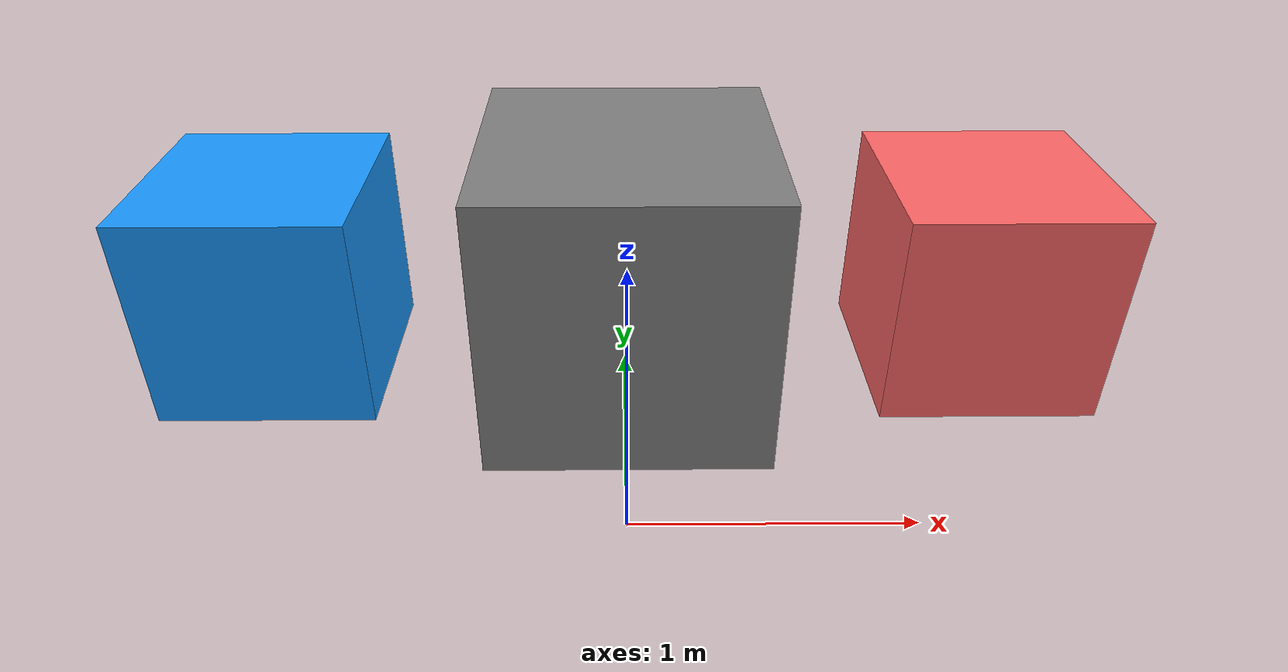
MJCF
<mujoco>
  <option gravity="0 0 -9.81"/>
  <worldbody>
    <body name="object" pos="0 0 1">
      <geom type="box" size="0.4 0.4 0.4" rgba="0.5 0.5 0.5 1"/>
    </body>
    <body name="light_fragment" pos="-1 0 1">
      <geom type="box" size="0.3 0.3 0.3" density="0.5" rgba="0.1 0.6 1 1"/>
      <joint type="free"/>
    </body>
    <body name="heavy_fragment" pos="1 0 1">
      <geom type="box" size="0.3 0.3 0.3" density="3" rgba="1 0.4 0.4 1"/>
      <joint type="free"/>
    </body>
  </worldbody>
</mujoco>
